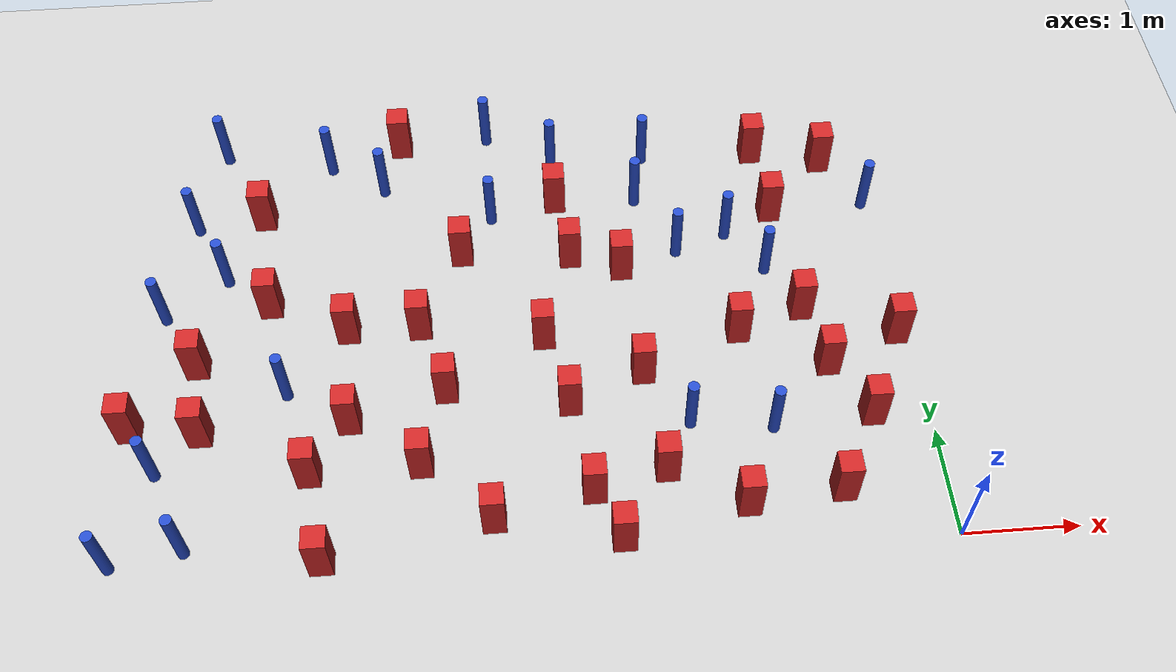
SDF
<sdf version="1.6">
 <world name="default">
  <model name="ground_plane">
   <static>1</static>
   <link name="link">
    <collision name="collision">
     <geometry><plane><normal>0 0 1</normal><size>100 100</size></plane></geometry>
     <surface><friction><ode><mu>100</mu><mu2>50</mu2></ode></friction></surface>
    </collision>
    <visual name="visual">
     <cast_shadows>0</cast_shadows>
     <geometry><plane><normal>0 0 1</normal><size>100 100</size></plane></geometry>
     <material>
      <ambient>1.0 1.0 1.0 1.0</ambient>
      <diffuse>0.8 0.8 0.8 1.0</diffuse>
      <specular>0.01 0.01 0.01 1.000000</specular>
     </material>
    </visual>
   </link>
  </model>
  <model name="pole_obstacle0">
   <static>true</static>
   <pose>-5.60489354962 1.792876674 2.88873142074e-08 -9.90536689445e-09 4.60219948999e-07 -1.20965994956e-07</pose>
   <link name="link">
    <pose>0 0 0.3 0 -0 0</pose>
    <inertial>
     <mass>1</mass>
     <inertia><ixx>0.145833</ixx><ixy>0</ixy><ixz>0</ixz><iyy>0.145833</iyy><iyz>0</iyz><izz>0.125</izz></inertia>
    </inertial>
    <collision name="collision">
     <geometry><cylinder><radius>0.05</radius><length>.6</length></cylinder></geometry>
    </collision>
    <visual name="visual">
     <geometry><cylinder><radius>0.05</radius><length>.6</length></cylinder></geometry>
     <material>
      <script><name>Gazebo/Blue</name><uri>file://media/materials/scripts/gazebo.material</uri></script>
     </material>
    </visual>
   </link>
  </model>
  <model name="pole_obstacle8">
   <static>true</static>
   <pose>-6.21378915268 3.09624534109 2.88873142074e-08 -9.90536690245e-09 4.6021994898e-07 -1.20965994966e-07</pose>
   <link name="link">
    <pose>0 0 0.3 0 -0 0</pose>
    <inertial>
     <mass>1</mass>
     <inertia><ixx>0.145833</ixx><ixy>0</ixy><ixz>0</ixz><iyy>0.145833</iyy><iyz>0</iyz><izz>0.125</izz></inertia>
    </inertial>
    <collision name="collision">
     <geometry><cylinder><radius>0.05</radius><length>.6</length></cylinder></geometry>
    </collision>
    <visual name="visual">
     <geometry><cylinder><radius>0.05</radius><length>.6</length></cylinder></geometry>
     <material>
      <script><name>Gazebo/Blue</name><uri>file://media/materials/scripts/gazebo.material</uri></script>
     </material>
    </visual>
   </link>
  </model>
  <model name="pole_obstacle12">
   <static>true</static>
   <pose>-6.74844758762 2.70002124592 2.88873142074e-08 -9.90536690245e-09 4.6021994898e-07 -1.20965994966e-07</pose>
   <link name="link">
    <pose>0 0 0.3 0 -0 0</pose>
    <inertial>
     <mass>1</mass>
     <inertia><ixx>0.145833</ixx><ixy>0</ixy><ixz>0</ixz><iyy>0.145833</iyy><iyz>0</iyz><izz>0.125</izz></inertia>
    </inertial>
    <collision name="collision">
     <geometry><cylinder><radius>0.05</radius><length>.6</length></cylinder></geometry>
    </collision>
    <visual name="visual">
     <geometry><cylinder><radius>0.05</radius><length>.6</length></cylinder></geometry>
     <material>
      <script><name>Gazebo/Blue</name><uri>file://media/materials/scripts/gazebo.material</uri></script>
     </material>
    </visual>
   </link>
  </model>
  <model name="square_post_obstacle9">
   <static>true</static>
   <pose>-3.12864663933 1.49392424948 8.22691968438e-08 7.2212513382e-06 -7.54495500217e-07 2.29674213826e-05</pose>
   <link name="link">
    <pose>0 0 0.25 0 -0 0</pose>
    <inertial>
     <mass>100</mass>
     <inertia>
      <ixx>0.166667</ixx>
      <ixy>0</ixy>
      <ixz>0</ixz>
      <iyy>0.166667</iyy>
      <iyz>0</iyz>
      <izz>0.166667</izz>
     </inertia>
    </inertial>
    <collision name="collision"><geometry><box><size>.2 .2 .5</size></box></geometry></collision>
    <visual name="visual">
     <geometry><box><size>.2 .2 .5</size></box></geometry>
     <material>
      <script><name>Gazebo/Red</name><uri>file://media/materials/scripts/gazebo.material</uri></script>
     </material>
    </visual>
   </link>
  </model>
  <model name="square_post_obstacle10">
   <static>true</static>
   <pose>-0.963395042714 2.35977024159 8.22691968438e-08 7.2212513382e-06 -7.54495500217e-07 2.29674213826e-05</pose>
   <link name="link">
    <pose>0 0 0.25 0 -0 0</pose>
    <inertial>
     <mass>100</mass>
     <inertia>
      <ixx>0.166667</ixx>
      <ixy>0</ixy>
      <ixz>0</ixz>
      <iyy>0.166667</iyy>
      <iyz>0</iyz>
      <izz>0.166667</izz>
     </inertia>
    </inertial>
    <collision name="collision"><geometry><box><size>.2 .2 .5</size></box></geometry></collision>
    <visual name="visual">
     <geometry><box><size>.2 .2 .5</size></box></geometry>
     <material>
      <script><name>Gazebo/Red</name><uri>file://media/materials/scripts/gazebo.material</uri></script>
     </material>
    </visual>
   </link>
  </model>
  <model name="pole_obstacle15">
   <static>true</static>
   <pose>-6.33041977614 4.64889348198 2.88873142074e-08 -9.90536690842e-09 4.60219948965e-07 -1.20965994976e-07</pose>
   <link name="link">
    <pose>0 0 0.3 0 -0 0</pose>
    <inertial>
     <mass>1</mass>
     <inertia><ixx>0.145833</ixx><ixy>0</ixy><ixz>0</ixz><iyy>0.145833</iyy><iyz>0</iyz><izz>0.125</izz></inertia>
    </inertial>
    <collision name="collision">
     <geometry><cylinder><radius>0.05</radius><length>.6</length></cylinder></geometry>
    </collision>
    <visual name="visual">
     <geometry><cylinder><radius>0.05</radius><length>.6</length></cylinder></geometry>
     <material>
      <script><name>Gazebo/Blue</name><uri>file://media/materials/scripts/gazebo.material</uri></script>
     </material>
    </visual>
   </link>
  </model>
  <model name="square_post_obstacle12">
   <static>true</static>
   <pose>-2.46374674068 1.77407036471 8.22691968438e-08 7.2212513382e-06 -7.54495500217e-07 2.29674213826e-05</pose>
   <link name="link">
    <pose>0 0 0.25 0 -0 0</pose>
    <inertial>
     <mass>100</mass>
     <inertia>
      <ixx>0.166667</ixx>
      <ixy>0</ixy>
      <ixz>0</ixz>
      <iyy>0.166667</iyy>
      <iyz>0</iyz>
      <izz>0.166667</izz>
     </inertia>
    </inertial>
    <collision name="collision"><geometry><box><size>.2 .2 .5</size></box></geometry></collision>
    <visual name="visual">
     <geometry><box><size>.2 .2 .5</size></box></geometry>
     <material>
      <script><name>Gazebo/Red</name><uri>file://media/materials/scripts/gazebo.material</uri></script>
     </material>
    </visual>
   </link>
  </model>
  <model name="pole_obstacle21">
   <static>true</static>
   <pose>-2.35833018893 3.78975664295 2.88873142074e-08 -9.90536690232e-09 4.6021994898e-07 -1.20965994968e-07</pose>
   <link name="link">
    <pose>0 0 0.3 0 -0 0</pose>
    <inertial>
     <mass>1</mass>
     <inertia><ixx>0.145833</ixx><ixy>0</ixy><ixz>0</ixz><iyy>0.145833</iyy><iyz>0</iyz><izz>0.125</izz></inertia>
    </inertial>
    <collision name="collision">
     <geometry><cylinder><radius>0.05</radius><length>.6</length></cylinder></geometry>
    </collision>
    <visual name="visual">
     <geometry><cylinder><radius>0.05</radius><length>.6</length></cylinder></geometry>
     <material>
      <script><name>Gazebo/Blue</name><uri>file://media/materials/scripts/gazebo.material</uri></script>
     </material>
    </visual>
   </link>
  </model>
  <model name="square_post_obstacle18">
   <static>true</static>
   <pose>-3.82786273622 0.410739086908 8.22691968438e-08 7.2212513382e-06 -7.54495500217e-07 2.29674213826e-05</pose>
   <link name="link">
    <pose>0 0 0.25 0 -0 0</pose>
    <inertial>
     <mass>100</mass>
     <inertia>
      <ixx>0.166667</ixx>
      <ixy>0</ixy>
      <ixz>0</ixz>
      <iyy>0.166667</iyy>
      <iyz>0</iyz>
      <izz>0.166667</izz>
     </inertia>
    </inertial>
    <collision name="collision"><geometry><box><size>.2 .2 .5</size></box></geometry></collision>
    <visual name="visual">
     <geometry><box><size>.2 .2 .5</size></box></geometry>
     <material>
      <script><name>Gazebo/Red</name><uri>file://media/materials/scripts/gazebo.material</uri></script>
     </material>
    </visual>
   </link>
  </model>
  <model name="square_post_obstacle23">
   <static>true</static>
   <pose>-6.40385683036 2.13041604049 8.22691968438e-08 7.2212513382e-06 -7.54495500217e-07 2.29674213826e-05</pose>
   <link name="link">
    <pose>0 0 0.25 0 -0 0</pose>
    <inertial>
     <mass>100</mass>
     <inertia>
      <ixx>0.166667</ixx>
      <ixy>0</ixy>
      <ixz>0</ixz>
      <iyy>0.166667</iyy>
      <iyz>0</iyz>
      <izz>0.166667</izz>
     </inertia>
    </inertial>
    <collision name="collision"><geometry><box><size>.2 .2 .5</size></box></geometry></collision>
    <visual name="visual">
     <geometry><box><size>.2 .2 .5</size></box></geometry>
     <material>
      <script><name>Gazebo/Red</name><uri>file://media/materials/scripts/gazebo.material</uri></script>
     </material>
    </visual>
   </link>
  </model>
  <model name="square_post_obstacle31">
   <static>true</static>
   <pose>-4.61185334437 4.64977888289 8.22691968438e-08 7.2212513382e-06 -7.54495500217e-07 2.29674213826e-05</pose>
   <link name="link">
    <pose>0 0 0.25 0 -0 0</pose>
    <inertial>
     <mass>100</mass>
     <inertia>
      <ixx>0.166667</ixx>
      <ixy>0</ixy>
      <ixz>0</ixz>
      <iyy>0.166667</iyy>
      <iyz>0</iyz>
      <izz>0.166667</izz>
     </inertia>
    </inertial>
    <collision name="collision"><geometry><box><size>.2 .2 .5</size></box></geometry></collision>
    <visual name="visual">
     <geometry><box><size>.2 .2 .5</size></box></geometry>
     <material>
      <script><name>Gazebo/Red</name><uri>file://media/materials/scripts/gazebo.material</uri></script>
     </material>
    </visual>
   </link>
  </model>
  <model name="square_post_obstacle32">
   <static>true</static>
   <pose>-4.42955065136 2.40559686794 8.22691968438e-08 7.2212513382e-06 -7.54495500217e-07 2.29674213826e-05</pose>
   <link name="link">
    <pose>0 0 0.25 0 -0 0</pose>
    <inertial>
     <mass>100</mass>
     <inertia>
      <ixx>0.166667</ixx>
      <ixy>0</ixy>
      <ixz>0</ixz>
      <iyy>0.166667</iyy>
      <iyz>0</iyz>
      <izz>0.166667</izz>
     </inertia>
    </inertial>
    <collision name="collision"><geometry><box><size>.2 .2 .5</size></box></geometry></collision>
    <visual name="visual">
     <geometry><box><size>.2 .2 .5</size></box></geometry>
     <material>
      <script><name>Gazebo/Red</name><uri>file://media/materials/scripts/gazebo.material</uri></script>
     </material>
    </visual>
   </link>
  </model>
  <model name="square_post_obstacle39">
   <static>true</static>
   <pose>-5.07668923891 2.41236537664 8.22691968438e-08 7.2212513382e-06 -7.54495500217e-07 2.29674213826e-05</pose>
   <link name="link">
    <pose>0 0 0.25 0 -0 0</pose>
    <inertial>
     <mass>100</mass>
     <inertia>
      <ixx>0.166667</ixx>
      <ixy>0</ixy>
      <ixz>0</ixz>
      <iyy>0.166667</iyy>
      <iyz>0</iyz>
      <izz>0.166667</izz>
     </inertia>
    </inertial>
    <collision name="collision"><geometry><box><size>.2 .2 .5</size></box></geometry></collision>
    <visual name="visual">
     <geometry><box><size>.2 .2 .5</size></box></geometry>
     <material>
      <script><name>Gazebo/Red</name><uri>file://media/materials/scripts/gazebo.material</uri></script>
     </material>
    </visual>
   </link>
  </model>
  <model name="pole_obstacle54">
   <static>true</static>
   <pose>-3.74867551729 3.66465191475 2.88873142074e-08 -9.90536689597e-09 4.60219948995e-07 -1.20965994957e-07</pose>
   <link name="link">
    <pose>0 0 0.3 0 -0 0</pose>
    <inertial>
     <mass>1</mass>
     <inertia><ixx>0.145833</ixx><ixy>0</ixy><ixz>0</ixz><iyy>0.145833</iyy><iyz>0</iyz><izz>0.125</izz></inertia>
    </inertial>
    <collision name="collision">
     <geometry><cylinder><radius>0.05</radius><length>.6</length></cylinder></geometry>
    </collision>
    <visual name="visual">
     <geometry><cylinder><radius>0.05</radius><length>.6</length></cylinder></geometry>
     <material>
      <script><name>Gazebo/Blue</name><uri>file://media/materials/scripts/gazebo.material</uri></script>
     </material>
    </visual>
   </link>
  </model>
  <model name="pole_obstacle55">
   <static>true</static>
   <pose>-5.29426649365 4.42433504899 2.88873142074e-08 -9.90536690842e-09 4.60219948965e-07 -1.20965994976e-07</pose>
   <link name="link">
    <pose>0 0 0.3 0 -0 0</pose>
    <inertial>
     <mass>1</mass>
     <inertia><ixx>0.145833</ixx><ixy>0</ixy><ixz>0</ixz><iyy>0.145833</iyy><iyz>0</iyz><izz>0.125</izz></inertia>
    </inertial>
    <collision name="collision">
     <geometry><cylinder><radius>0.05</radius><length>.6</length></cylinder></geometry>
    </collision>
    <visual name="visual">
     <geometry><cylinder><radius>0.05</radius><length>.6</length></cylinder></geometry>
     <material>
      <script><name>Gazebo/Blue</name><uri>file://media/materials/scripts/gazebo.material</uri></script>
     </material>
    </visual>
   </link>
  </model>
  <model name="square_post_obstacle45">
   <static>true</static>
   <pose>-5.04418810294 1.4522428474 8.22691968438e-08 7.2212513382e-06 -7.54495500217e-07 2.29674213826e-05</pose>
   <link name="link">
    <pose>0 0 0.25 0 -0 0</pose>
    <inertial>
     <mass>100</mass>
     <inertia>
      <ixx>0.166667</ixx>
      <ixy>0</ixy>
      <ixz>0</ixz>
      <iyy>0.166667</iyy>
      <iyz>0</iyz>
      <izz>0.166667</izz>
     </inertia>
    </inertial>
    <collision name="collision"><geometry><box><size>.2 .2 .5</size></box></geometry></collision>
    <visual name="visual">
     <geometry><box><size>.2 .2 .5</size></box></geometry>
     <material>
      <script><name>Gazebo/Red</name><uri>file://media/materials/scripts/gazebo.material</uri></script>
     </material>
    </visual>
   </link>
  </model>
  <model name="square_post_obstacle47">
   <static>true</static>
   <pose>-2.77287363336 0.161301545881 8.22691968438e-08 7.2212513382e-06 -7.54495500217e-07 2.29674213826e-05</pose>
   <link name="link">
    <pose>0 0 0.25 0 -0 0</pose>
    <inertial>
     <mass>100</mass>
     <inertia>
      <ixx>0.166667</ixx>
      <ixy>0</ixy>
      <ixz>0</ixz>
      <iyy>0.166667</iyy>
      <iyz>0</iyz>
      <izz>0.166667</izz>
     </inertia>
    </inertial>
    <collision name="collision"><geometry><box><size>.2 .2 .5</size></box></geometry></collision>
    <visual name="visual">
     <geometry><box><size>.2 .2 .5</size></box></geometry>
     <material>
      <script><name>Gazebo/Red</name><uri>file://media/materials/scripts/gazebo.material</uri></script>
     </material>
    </visual>
   </link>
  </model>
  <model name="square_post_obstacle48">
   <static>true</static>
   <pose>-2.98353195174 0.617059585384 8.22691968438e-08 7.2212513382e-06 -7.54495500217e-07 2.29674213826e-05</pose>
   <link name="link">
    <pose>0 0 0.25 0 -0 0</pose>
    <inertial>
     <mass>100</mass>
     <inertia>
      <ixx>0.166667</ixx>
      <ixy>0</ixy>
      <ixz>0</ixz>
      <iyy>0.166667</iyy>
      <iyz>0</iyz>
      <izz>0.166667</izz>
     </inertia>
    </inertial>
    <collision name="collision"><geometry><box><size>.2 .2 .5</size></box></geometry></collision>
    <visual name="visual">
     <geometry><box><size>.2 .2 .5</size></box></geometry>
     <material>
      <script><name>Gazebo/Red</name><uri>file://media/materials/scripts/gazebo.material</uri></script>
     </material>
    </visual>
   </link>
  </model>
  <model name="square_post_obstacle55">
   <static>true</static>
   <pose>-0.900520533999 0.477779287235 8.22691968438e-08 7.22125133819e-06 -7.54495500217e-07 2.29674213826e-05</pose>
   <link name="link">
    <pose>0 0 0.25 0 -0 0</pose>
    <inertial>
     <mass>100</mass>
     <inertia>
      <ixx>0.166667</ixx>
      <ixy>0</ixy>
      <ixz>0</ixz>
      <iyy>0.166667</iyy>
      <iyz>0</iyz>
      <izz>0.166667</izz>
     </inertia>
    </inertial>
    <collision name="collision"><geometry><box><size>.2 .2 .5</size></box></geometry></collision>
    <visual name="visual">
     <geometry><box><size>.2 .2 .5</size></box></geometry>
     <material>
      <script><name>Gazebo/Red</name><uri>file://media/materials/scripts/gazebo.material</uri></script>
     </material>
    </visual>
   </link>
  </model>
  <model name="pole_obstacle74">
   <static>true</static>
   <pose>-1.38763711119 1.13230665274 2.88873142074e-08 -9.90536689672e-09 4.60219948993e-07 -1.20965994959e-07</pose>
   <link name="link">
    <pose>0 0 0.3 0 -0 0</pose>
    <inertial>
     <mass>1</mass>
     <inertia><ixx>0.145833</ixx><ixy>0</ixy><ixz>0</ixz><iyy>0.145833</iyy><iyz>0</iyz><izz>0.125</izz></inertia>
    </inertial>
    <collision name="collision">
     <geometry><cylinder><radius>0.05</radius><length>.6</length></cylinder></geometry>
    </collision>
    <visual name="visual">
     <geometry><cylinder><radius>0.05</radius><length>.6</length></cylinder></geometry>
     <material>
      <script><name>Gazebo/Blue</name><uri>file://media/materials/scripts/gazebo.material</uri></script>
     </material>
    </visual>
   </link>
  </model>
  <model name="square_post_obstacle66">
   <static>true</static>
   <pose>-2.3560046566 0.77754234964 8.22691968438e-08 7.2212513382e-06 -7.54495500217e-07 2.29674213826e-05</pose>
   <link name="link">
    <pose>0 0 0.25 0 -0 0</pose>
    <inertial>
     <mass>100</mass>
     <inertia>
      <ixx>0.166667</ixx>
      <ixy>0</ixy>
      <ixz>0</ixz>
      <iyy>0.166667</iyy>
      <iyz>0</iyz>
      <izz>0.166667</izz>
     </inertia>
    </inertial>
    <collision name="collision"><geometry><box><size>.2 .2 .5</size></box></geometry></collision>
    <visual name="visual">
     <geometry><box><size>.2 .2 .5</size></box></geometry>
     <material>
      <script><name>Gazebo/Red</name><uri>file://media/materials/scripts/gazebo.material</uri></script>
     </material>
    </visual>
   </link>
  </model>
  <model name="pole_obstacle79">
   <static>true</static>
   <pose>-0.157778980008 3.58019601915 2.88873142074e-08 -9.9053669244e-09 4.60219948928e-07 -1.20965994988e-07</pose>
   <link name="link">
    <pose>0 0 0.3 0 -0 0</pose>
    <inertial>
     <mass>1</mass>
     <inertia><ixx>0.145833</ixx><ixy>0</ixy><ixz>0</ixz><iyy>0.145833</iyy><iyz>0</iyz><izz>0.125</izz></inertia>
    </inertial>
    <collision name="collision">
     <geometry><cylinder><radius>0.05</radius><length>.6</length></cylinder></geometry>
    </collision>
    <visual name="visual">
     <geometry><cylinder><radius>0.05</radius><length>.6</length></cylinder></geometry>
     <material>
      <script><name>Gazebo/Blue</name><uri>file://media/materials/scripts/gazebo.material</uri></script>
     </material>
    </visual>
   </link>
  </model>
  <model name="pole_obstacle80">
   <static>true</static>
   <pose>-6.9645458156 0.231076082944 2.88873142074e-08 -9.90536689438e-09 4.60219948999e-07 -1.20965994956e-07</pose>
   <link name="link">
    <pose>0 0 0.3 0 -0 0</pose>
    <inertial>
     <mass>1</mass>
     <inertia><ixx>0.145833</ixx><ixy>0</ixy><ixz>0</ixz><iyy>0.145833</iyy><iyz>0</iyz><izz>0.125</izz></inertia>
    </inertial>
    <collision name="collision">
     <geometry><cylinder><radius>0.05</radius><length>.6</length></cylinder></geometry>
    </collision>
    <visual name="visual">
     <geometry><cylinder><radius>0.05</radius><length>.6</length></cylinder></geometry>
     <material>
      <script><name>Gazebo/Blue</name><uri>file://media/materials/scripts/gazebo.material</uri></script>
     </material>
    </visual>
   </link>
  </model>
  <model name="square_post_obstacle73">
   <static>true</static>
   <pose>-0.519013909457 1.19269131074 8.22691968438e-08 7.2212513382e-06 -7.54495500217e-07 2.29674213826e-05</pose>
   <link name="link">
    <pose>0 0 0.25 0 -0 0</pose>
    <inertial>
     <mass>100</mass>
     <inertia>
      <ixx>0.166667</ixx>
      <ixy>0</ixy>
      <ixz>0</ixz>
      <iyy>0.166667</iyy>
      <iyz>0</iyz>
      <izz>0.166667</izz>
     </inertia>
    </inertial>
    <collision name="collision"><geometry><box><size>.2 .2 .5</size></box></geometry></collision>
    <visual name="visual">
     <geometry><box><size>.2 .2 .5</size></box></geometry>
     <material>
      <script><name>Gazebo/Red</name><uri>file://media/materials/scripts/gazebo.material</uri></script>
     </material>
    </visual>
   </link>
  </model>
  <model name="square_post_obstacle85">
   <static>true</static>
   <pose>-2.55890255575 2.94618447127 8.22691968438e-08 7.2212513382e-06 -7.54495500217e-07 2.29674213826e-05</pose>
   <link name="link">
    <pose>0 0 0.25 0 -0 0</pose>
    <inertial>
     <mass>100</mass>
     <inertia>
      <ixx>0.166667</ixx>
      <ixy>0</ixy>
      <ixz>0</ixz>
      <iyy>0.166667</iyy>
      <iyz>0</iyz>
      <izz>0.166667</izz>
     </inertia>
    </inertial>
    <collision name="collision"><geometry><box><size>.2 .2 .5</size></box></geometry></collision>
    <visual name="visual">
     <geometry><box><size>.2 .2 .5</size></box></geometry>
     <material>
      <script><name>Gazebo/Red</name><uri>file://media/materials/scripts/gazebo.material</uri></script>
     </material>
    </visual>
   </link>
  </model>
  <model name="pole_obstacle104">
   <static>true</static>
   <pose>-1.53660623125 3.30327488801 2.88873142074e-08 -9.90536689791e-09 4.6021994899e-07 -1.20965994959e-07</pose>
   <link name="link">
    <pose>0 0 0.3 0 -0 0</pose>
    <inertial>
     <mass>1</mass>
     <inertia><ixx>0.145833</ixx><ixy>0</ixy><ixz>0</ixz><iyy>0.145833</iyy><iyz>0</iyz><izz>0.125</izz></inertia>
    </inertial>
    <collision name="collision">
     <geometry><cylinder><radius>0.05</radius><length>.6</length></cylinder></geometry>
    </collision>
    <visual name="visual">
     <geometry><cylinder><radius>0.05</radius><length>.6</length></cylinder></geometry>
     <material>
      <script><name>Gazebo/Blue</name><uri>file://media/materials/scripts/gazebo.material</uri></script>
     </material>
    </visual>
   </link>
  </model>
  <model name="square_post_obstacle108">
   <static>true</static>
   <pose>-4.42427465037 0.974187072032 8.22691968438e-08 7.2212513382e-06 -7.54495500217e-07 2.29674213826e-05</pose>
   <link name="link">
    <pose>0 0 0.25 0 -0 0</pose>
    <inertial>
     <mass>100</mass>
     <inertia>
      <ixx>0.166667</ixx>
      <ixy>0</ixy>
      <ixz>0</ixz>
      <iyy>0.166667</iyy>
      <iyz>0</iyz>
      <izz>0.166667</izz>
     </inertia>
    </inertial>
    <collision name="collision"><geometry><box><size>.2 .2 .5</size></box></geometry></collision>
    <visual name="visual">
     <geometry><box><size>.2 .2 .5</size></box></geometry>
     <material>
      <script><name>Gazebo/Red</name><uri>file://media/materials/scripts/gazebo.material</uri></script>
     </material>
    </visual>
   </link>
  </model>
  <model name="square_post_obstacle112">
   <static>true</static>
   <pose>-5.90844666778 3.80968562257 8.22691968438e-08 7.2212513382e-06 -7.54495500217e-07 2.29674213826e-05</pose>
   <link name="link">
    <pose>0 0 0.25 0 -0 0</pose>
    <inertial>
     <mass>100</mass>
     <inertia>
      <ixx>0.166667</ixx>
      <ixy>0</ixy>
      <ixz>0</ixz>
      <iyy>0.166667</iyy>
      <iyz>0</iyz>
      <izz>0.166667</izz>
     </inertia>
    </inertial>
    <collision name="collision"><geometry><box><size>.2 .2 .5</size></box></geometry></collision>
    <visual name="visual">
     <geometry><box><size>.2 .2 .5</size></box></geometry>
     <material>
      <script><name>Gazebo/Red</name><uri>file://media/materials/scripts/gazebo.material</uri></script>
     </material>
    </visual>
   </link>
  </model>
  <model name="square_post_obstacle120">
   <static>true</static>
   <pose>-3.02503774349 3.12774283715 8.22691968438e-08 7.2212513382e-06 -7.54495500217e-07 2.29674213826e-05</pose>
   <link name="link">
    <pose>0 0 0.25 0 -0 0</pose>
    <inertial>
     <mass>100</mass>
     <inertia>
      <ixx>0.166667</ixx>
      <ixy>0</ixy>
      <ixz>0</ixz>
      <iyy>0.166667</iyy>
      <iyz>0</iyz>
      <izz>0.166667</izz>
     </inertia>
    </inertial>
    <collision name="collision"><geometry><box><size>.2 .2 .5</size></box></geometry></collision>
    <visual name="visual">
     <geometry><box><size>.2 .2 .5</size></box></geometry>
     <material>
      <script><name>Gazebo/Red</name><uri>file://media/materials/scripts/gazebo.material</uri></script>
     </material>
    </visual>
   </link>
  </model>
  <model name="pole_obstacle119">
   <static>true</static>
   <pose>-6.68403330491 1.06894650893 2.88873142074e-08 -9.90536689445e-09 4.60219948999e-07 -1.20965994956e-07</pose>
   <link name="link">
    <pose>0 0 0.3 0 -0 0</pose>
    <inertial>
     <mass>1</mass>
     <inertia><ixx>0.145833</ixx><ixy>0</ixy><ixz>0</ixz><iyy>0.145833</iyy><iyz>0</iyz><izz>0.125</izz></inertia>
    </inertial>
    <collision name="collision">
     <geometry><cylinder><radius>0.05</radius><length>.6</length></cylinder></geometry>
    </collision>
    <visual name="visual">
     <geometry><cylinder><radius>0.05</radius><length>.6</length></cylinder></geometry>
     <material>
      <script><name>Gazebo/Blue</name><uri>file://media/materials/scripts/gazebo.material</uri></script>
     </material>
    </visual>
   </link>
  </model>
  <model name="square_post_obstacle125">
   <static>true</static>
   <pose>-6.3211867806 1.42510420292 8.22691968438e-08 7.2212513382e-06 -7.54495500217e-07 2.29674213826e-05</pose>
   <link name="link">
    <pose>0 0 0.25 0 -0 0</pose>
    <inertial>
     <mass>100</mass>
     <inertia>
      <ixx>0.166667</ixx>
      <ixy>0</ixy>
      <ixz>0</ixz>
      <iyy>0.166667</iyy>
      <iyz>0</iyz>
      <izz>0.166667</izz>
     </inertia>
    </inertial>
    <collision name="collision"><geometry><box><size>.2 .2 .5</size></box></geometry></collision>
    <visual name="visual">
     <geometry><box><size>.2 .2 .5</size></box></geometry>
     <material>
      <script><name>Gazebo/Red</name><uri>file://media/materials/scripts/gazebo.material</uri></script>
     </material>
    </visual>
   </link>
  </model>
  <model name="pole_obstacle130">
   <static>true</static>
   <pose>-3.13848923542 4.34505618959 2.88873142074e-08 -9.90536692062e-09 4.60219948937e-07 -1.20965994985e-07</pose>
   <link name="link">
    <pose>0 0 0.3 0 -0 0</pose>
    <inertial>
     <mass>1</mass>
     <inertia><ixx>0.145833</ixx><ixy>0</ixy><ixz>0</ixz><iyy>0.145833</iyy><iyz>0</iyz><izz>0.125</izz></inertia>
    </inertial>
    <collision name="collision">
     <geometry><cylinder><radius>0.05</radius><length>.6</length></cylinder></geometry>
    </collision>
    <visual name="visual">
     <geometry><cylinder><radius>0.05</radius><length>.6</length></cylinder></geometry>
     <material>
      <script><name>Gazebo/Blue</name><uri>file://media/materials/scripts/gazebo.material</uri></script>
     </material>
    </visual>
   </link>
  </model>
  <model name="square_post_obstacle128">
   <static>true</static>
   <pose>-1.15658483708 4.31016241691 8.22691968438e-08 7.2212513382e-06 -7.54495500217e-07 2.29674213826e-05</pose>
   <link name="link">
    <pose>0 0 0.25 0 -0 0</pose>
    <inertial>
     <mass>100</mass>
     <inertia>
      <ixx>0.166667</ixx>
      <ixy>0</ixy>
      <ixz>0</ixz>
      <iyy>0.166667</iyy>
      <iyz>0</iyz>
      <izz>0.166667</izz>
     </inertia>
    </inertial>
    <collision name="collision"><geometry><box><size>.2 .2 .5</size></box></geometry></collision>
    <visual name="visual">
     <geometry><box><size>.2 .2 .5</size></box></geometry>
     <material>
      <script><name>Gazebo/Red</name><uri>file://media/materials/scripts/gazebo.material</uri></script>
     </material>
    </visual>
   </link>
  </model>
  <model name="square_post_obstacle130">
   <static>true</static>
   <pose>-0.144939360073 2.02659496928 8.22691968438e-08 7.2212513382e-06 -7.54495500217e-07 2.29674213826e-05</pose>
   <link name="link">
    <pose>0 0 0.25 0 -0 0</pose>
    <inertial>
     <mass>100</mass>
     <inertia>
      <ixx>0.166667</ixx>
      <ixy>0</ixy>
      <ixz>0</ixz>
      <iyy>0.166667</iyy>
      <iyz>0</iyz>
      <izz>0.166667</izz>
     </inertia>
    </inertial>
    <collision name="collision"><geometry><box><size>.2 .2 .5</size></box></geometry></collision>
    <visual name="visual">
     <geometry><box><size>.2 .2 .5</size></box></geometry>
     <material>
      <script><name>Gazebo/Red</name><uri>file://media/materials/scripts/gazebo.material</uri></script>
     </material>
    </visual>
   </link>
  </model>
  <model name="square_post_obstacle131">
   <static>true</static>
   <pose>-1.56836750986 2.15038411632 8.22691968438e-08 7.2212513382e-06 -7.54495500217e-07 2.29674213826e-05</pose>
   <link name="link">
    <pose>0 0 0.25 0 -0 0</pose>
    <inertial>
     <mass>100</mass>
     <inertia>
      <ixx>0.166667</ixx>
      <ixy>0</ixy>
      <ixz>0</ixz>
      <iyy>0.166667</iyy>
      <iyz>0</iyz>
      <izz>0.166667</izz>
     </inertia>
    </inertial>
    <collision name="collision"><geometry><box><size>.2 .2 .5</size></box></geometry></collision>
    <visual name="visual">
     <geometry><box><size>.2 .2 .5</size></box></geometry>
     <material>
      <script><name>Gazebo/Red</name><uri>file://media/materials/scripts/gazebo.material</uri></script>
     </material>
    </visual>
   </link>
  </model>
  <model name="square_post_obstacle132">
   <static>true</static>
   <pose>-5.37058958059 0.956360415068 8.22691968438e-08 7.22125133819e-06 -7.54495500217e-07 2.29674213826e-05</pose>
   <link name="link">
    <pose>0 0 0.25 0 -0 0</pose>
    <inertial>
     <mass>100</mass>
     <inertia>
      <ixx>0.166667</ixx>
      <ixy>0</ixy>
      <ixz>0</ixz>
      <iyy>0.166667</iyy>
      <iyz>0</iyz>
      <izz>0.166667</izz>
     </inertia>
    </inertial>
    <collision name="collision"><geometry><box><size>.2 .2 .5</size></box></geometry></collision>
    <visual name="visual">
     <geometry><box><size>.2 .2 .5</size></box></geometry>
     <material>
      <script><name>Gazebo/Red</name><uri>file://media/materials/scripts/gazebo.material</uri></script>
     </material>
    </visual>
   </link>
  </model>
  <model name="pole_obstacle134">
   <static>true</static>
   <pose>-4.77715220601 4.09955190887 2.88873142074e-08 -9.90536690842e-09 4.60219948965e-07 -1.20965994976e-07</pose>
   <link name="link">
    <pose>0 0 0.3 0 -0 0</pose>
    <inertial>
     <mass>1</mass>
     <inertia><ixx>0.145833</ixx><ixy>0</ixy><ixz>0</ixz><iyy>0.145833</iyy><iyz>0</iyz><izz>0.125</izz></inertia>
    </inertial>
    <collision name="collision">
     <geometry><cylinder><radius>0.05</radius><length>.6</length></cylinder></geometry>
    </collision>
    <visual name="visual">
     <geometry><cylinder><radius>0.05</radius><length>.6</length></cylinder></geometry>
     <material>
      <script><name>Gazebo/Blue</name><uri>file://media/materials/scripts/gazebo.material</uri></script>
     </material>
    </visual>
   </link>
  </model>
  <model name="pole_obstacle143">
   <static>true</static>
   <pose>-6.36720929073 0.326840538518 2.88873142074e-08 -9.90536689981e-09 4.60219948986e-07 -1.20965994962e-07</pose>
   <link name="link">
    <pose>0 0 0.3 0 -0 0</pose>
    <inertial>
     <mass>1</mass>
     <inertia><ixx>0.145833</ixx><ixy>0</ixy><ixz>0</ixz><iyy>0.145833</iyy><iyz>0</iyz><izz>0.125</izz></inertia>
    </inertial>
    <collision name="collision">
     <geometry><cylinder><radius>0.05</radius><length>.6</length></cylinder></geometry>
    </collision>
    <visual name="visual">
     <geometry><cylinder><radius>0.05</radius><length>.6</length></cylinder></geometry>
     <material>
      <script><name>Gazebo/Blue</name><uri>file://media/materials/scripts/gazebo.material</uri></script>
     </material>
    </visual>
   </link>
  </model>
  <model name="pole_obstacle144">
   <static>true</static>
   <pose>-2.23688212649 4.33697302398 2.88873142074e-08 -9.90536689859e-09 4.60219948989e-07 -1.20965994961e-07</pose>
   <link name="link">
    <pose>0 0 0.3 0 -0 0</pose>
    <inertial>
     <mass>1</mass>
     <inertia><ixx>0.145833</ixx><ixy>0</ixy><ixz>0</ixz><iyy>0.145833</iyy><iyz>0</iyz><izz>0.125</izz></inertia>
    </inertial>
    <collision name="collision">
     <geometry><cylinder><radius>0.05</radius><length>.6</length></cylinder></geometry>
    </collision>
    <visual name="visual">
     <geometry><cylinder><radius>0.05</radius><length>.6</length></cylinder></geometry>
     <material>
      <script><name>Gazebo/Blue</name><uri>file://media/materials/scripts/gazebo.material</uri></script>
     </material>
    </visual>
   </link>
  </model>
  <model name="pole_obstacle148">
   <static>true</static>
   <pose>-2.10301368535 1.2326385624 2.88873142074e-08 -9.90536689395e-09 4.60219949e-07 -1.20965994953e-07</pose>
   <link name="link">
    <pose>0 0 0.3 0 -0 0</pose>
    <inertial>
     <mass>1</mass>
     <inertia><ixx>0.145833</ixx><ixy>0</ixy><ixz>0</ixz><iyy>0.145833</iyy><iyz>0</iyz><izz>0.125</izz></inertia>
    </inertial>
    <collision name="collision">
     <geometry><cylinder><radius>0.05</radius><length>.6</length></cylinder></geometry>
    </collision>
    <visual name="visual">
     <geometry><cylinder><radius>0.05</radius><length>.6</length></cylinder></geometry>
     <material>
      <script><name>Gazebo/Blue</name><uri>file://media/materials/scripts/gazebo.material</uri></script>
     </material>
    </visual>
   </link>
  </model>
  <model name="square_post_obstacle152">
   <static>true</static>
   <pose>-3.13187728901 3.81449629504 8.22691968438e-08 7.2212513382e-06 -7.54495500217e-07 2.29674213826e-05</pose>
   <link name="link">
    <pose>0 0 0.25 0 -0 0</pose>
    <inertial>
     <mass>100</mass>
     <inertia>
      <ixx>0.166667</ixx>
      <ixy>0</ixy>
      <ixz>0</ixz>
      <iyy>0.166667</iyy>
      <iyz>0</iyz>
      <izz>0.166667</izz>
     </inertia>
    </inertial>
    <collision name="collision"><geometry><box><size>.2 .2 .5</size></box></geometry></collision>
    <visual name="visual">
     <geometry><box><size>.2 .2 .5</size></box></geometry>
     <material>
      <script><name>Gazebo/Red</name><uri>file://media/materials/scripts/gazebo.material</uri></script>
     </material>
    </visual>
   </link>
  </model>
  <model name="pole_obstacle157">
   <static>true</static>
   <pose>-1.21621449976 2.85590921403 2.88873142074e-08 -9.90536689791e-09 4.6021994899e-07 -1.20965994959e-07</pose>
   <link name="link">
    <pose>0 0 0.3 0 -0 0</pose>
    <inertial>
     <mass>1</mass>
     <inertia><ixx>0.145833</ixx><ixy>0</ixy><ixz>0</ixz><iyy>0.145833</iyy><iyz>0</iyz><izz>0.125</izz></inertia>
    </inertial>
    <collision name="collision">
     <geometry><cylinder><radius>0.05</radius><length>.6</length></cylinder></geometry>
    </collision>
    <visual name="visual">
     <geometry><cylinder><radius>0.05</radius><length>.6</length></cylinder></geometry>
     <material>
      <script><name>Gazebo/Blue</name><uri>file://media/materials/scripts/gazebo.material</uri></script>
     </material>
    </visual>
   </link>
  </model>
  <model name="square_post_obstacle156">
   <static>true</static>
   <pose>-4.20197435618 1.70629069803 8.22691968438e-08 7.2212513382e-06 -7.54495500217e-07 2.29674213826e-05</pose>
   <link name="link">
    <pose>0 0 0.25 0 -0 0</pose>
    <inertial>
     <mass>100</mass>
     <inertia>
      <ixx>0.166667</ixx>
      <ixy>0</ixy>
      <ixz>0</ixz>
      <iyy>0.166667</iyy>
      <iyz>0</iyz>
      <izz>0.166667</izz>
     </inertia>
    </inertial>
    <collision name="collision"><geometry><box><size>.2 .2 .5</size></box></geometry></collision>
    <visual name="visual">
     <geometry><box><size>.2 .2 .5</size></box></geometry>
     <material>
      <script><name>Gazebo/Red</name><uri>file://media/materials/scripts/gazebo.material</uri></script>
     </material>
    </visual>
   </link>
  </model>
  <model name="square_post_obstacle169">
   <static>true</static>
   <pose>-5.79058324302 2.75443466463 8.22691968438e-08 7.2212513382e-06 -7.54495500217e-07 2.29674213826e-05</pose>
   <link name="link">
    <pose>0 0 0.25 0 -0 0</pose>
    <inertial>
     <mass>100</mass>
     <inertia>
      <ixx>0.166667</ixx>
      <ixy>0</ixy>
      <ixz>0</ixz>
      <iyy>0.166667</iyy>
      <iyz>0</iyz>
      <izz>0.166667</izz>
     </inertia>
    </inertial>
    <collision name="collision"><geometry><box><size>.2 .2 .5</size></box></geometry></collision>
    <visual name="visual">
     <geometry><box><size>.2 .2 .5</size></box></geometry>
     <material>
      <script><name>Gazebo/Red</name><uri>file://media/materials/scripts/gazebo.material</uri></script>
     </material>
    </visual>
   </link>
  </model>
  <model name="square_post_obstacle173">
   <static>true</static>
   <pose>-1.08059151419 3.54235540296 8.22691968438e-08 7.22125133819e-06 -7.54495500217e-07 2.29674213826e-05</pose>
   <link name="link">
    <pose>0 0 0.25 0 -0 0</pose>
    <inertial>
     <mass>100</mass>
     <inertia>
      <ixx>0.166667</ixx>
      <ixy>0</ixy>
      <ixz>0</ixz>
      <iyy>0.166667</iyy>
      <iyz>0</iyz>
      <izz>0.166667</izz>
     </inertia>
    </inertial>
    <collision name="collision"><geometry><box><size>.2 .2 .5</size></box></geometry></collision>
    <visual name="visual">
     <geometry><box><size>.2 .2 .5</size></box></geometry>
     <material>
      <script><name>Gazebo/Red</name><uri>file://media/materials/scripts/gazebo.material</uri></script>
     </material>
    </visual>
   </link>
  </model>
  <model name="square_post_obstacle174">
   <static>true</static>
   <pose>-0.501721761248 4.1390213821 8.22691968438e-08 7.2212513382e-06 -7.54495500217e-07 2.29674213826e-05</pose>
   <link name="link">
    <pose>0 0 0.25 0 -0 0</pose>
    <inertial>
     <mass>100</mass>
     <inertia>
      <ixx>0.166667</ixx>
      <ixy>0</ixy>
      <ixz>0</ixz>
      <iyy>0.166667</iyy>
      <iyz>0</iyz>
      <izz>0.166667</izz>
     </inertia>
    </inertial>
    <collision name="collision"><geometry><box><size>.2 .2 .5</size></box></geometry></collision>
    <visual name="visual">
     <geometry><box><size>.2 .2 .5</size></box></geometry>
     <material>
      <script><name>Gazebo/Red</name><uri>file://media/materials/scripts/gazebo.material</uri></script>
     </material>
    </visual>
   </link>
  </model>
  <model name="pole_obstacle177">
   <static>true</static>
   <pose>-6.53852456926 3.7409930987 2.88873142074e-08 -9.90536690245e-09 4.6021994898e-07 -1.20965994966e-07</pose>
   <link name="link">
    <pose>0 0 0.3 0 -0 0</pose>
    <inertial>
     <mass>1</mass>
     <inertia><ixx>0.145833</ixx><ixy>0</ixy><ixz>0</ixz><iyy>0.145833</iyy><iyz>0</iyz><izz>0.125</izz></inertia>
    </inertial>
    <collision name="collision">
     <geometry><cylinder><radius>0.05</radius><length>.6</length></cylinder></geometry>
    </collision>
    <visual name="visual">
     <geometry><cylinder><radius>0.05</radius><length>.6</length></cylinder></geometry>
     <material>
      <script><name>Gazebo/Blue</name><uri>file://media/materials/scripts/gazebo.material</uri></script>
     </material>
    </visual>
   </link>
  </model>
  <model name="square_post_obstacle177">
   <static>true</static>
   <pose>-3.32029570895 2.21395664637 8.22691968438e-08 7.2212513382e-06 -7.54495500217e-07 2.29674213826e-05</pose>
   <link name="link">
    <pose>0 0 0.25 0 -0 0</pose>
    <inertial>
     <mass>100</mass>
     <inertia>
      <ixx>0.166667</ixx>
      <ixy>0</ixy>
      <ixz>0</ixz>
      <iyy>0.166667</iyy>
      <iyz>0</iyz>
      <izz>0.166667</izz>
     </inertia>
    </inertial>
    <collision name="collision"><geometry><box><size>.2 .2 .5</size></box></geometry></collision>
    <visual name="visual">
     <geometry><box><size>.2 .2 .5</size></box></geometry>
     <material>
      <script><name>Gazebo/Red</name><uri>file://media/materials/scripts/gazebo.material</uri></script>
     </material>
    </visual>
   </link>
  </model>
  <model name="square_post_obstacle192">
   <static>true</static>
   <pose>-0.81776552491 1.73827073479 8.22691968438e-08 7.2212513382e-06 -7.54495500217e-07 2.29674213826e-05</pose>
   <link name="link">
    <pose>0 0 0.25 0 -0 0</pose>
    <inertial>
     <mass>100</mass>
     <inertia>
      <ixx>0.166667</ixx>
      <ixy>0</ixy>
      <ixz>0</ixz>
      <iyy>0.166667</iyy>
      <iyz>0</iyz>
      <izz>0.166667</izz>
     </inertia>
    </inertial>
    <collision name="collision"><geometry><box><size>.2 .2 .5</size></box></geometry></collision>
    <visual name="visual">
     <geometry><box><size>.2 .2 .5</size></box></geometry>
     <material>
      <script><name>Gazebo/Red</name><uri>file://media/materials/scripts/gazebo.material</uri></script>
     </material>
    </visual>
   </link>
  </model>
  <model name="pole_obstacle189">
   <static>true</static>
   <pose>-2.02135909973 3.12976340162 2.88873142074e-08 -9.90536692171e-09 4.60219948934e-07 -1.20965994985e-07</pose>
   <link name="link">
    <pose>0 0 0.3 0 -0 0</pose>
    <inertial>
     <mass>1</mass>
     <inertia><ixx>0.145833</ixx><ixy>0</ixy><ixz>0</ixz><iyy>0.145833</iyy><iyz>0</iyz><izz>0.125</izz></inertia>
    </inertial>
    <collision name="collision">
     <geometry><cylinder><radius>0.05</radius><length>.6</length></cylinder></geometry>
    </collision>
    <visual name="visual">
     <geometry><cylinder><radius>0.05</radius><length>.6</length></cylinder></geometry>
     <material>
      <script><name>Gazebo/Blue</name><uri>file://media/materials/scripts/gazebo.material</uri></script>
     </material>
    </visual>
   </link>
  </model>
  <model name="square_post_obstacle203">
   <static>true</static>
   <pose>-4.03522082931 3.22420011162 8.22691968438e-08 7.2212513382e-06 -7.54495500217e-07 2.29674213826e-05</pose>
   <link name="link">
    <pose>0 0 0.25 0 -0 0</pose>
    <inertial>
     <mass>100</mass>
     <inertia>
      <ixx>0.166667</ixx>
      <ixy>0</ixy>
      <ixz>0</ixz>
      <iyy>0.166667</iyy>
      <iyz>0</iyz>
      <izz>0.166667</izz>
     </inertia>
    </inertial>
    <collision name="collision"><geometry><box><size>.2 .2 .5</size></box></geometry></collision>
    <visual name="visual">
     <geometry><box><size>.2 .2 .5</size></box></geometry>
     <material>
      <script><name>Gazebo/Red</name><uri>file://media/materials/scripts/gazebo.material</uri></script>
     </material>
    </visual>
   </link>
  </model>
  <model name="square_post_obstacle208">
   <static>true</static>
   <pose>-1.71300582676 0.401984616326 8.22691968438e-08 7.2212513382e-06 -7.54495500217e-07 2.29674213826e-05</pose>
   <link name="link">
    <pose>0 0 0.25 0 -0 0</pose>
    <inertial>
     <mass>100</mass>
     <inertia>
      <ixx>0.166667</ixx>
      <ixy>0</ixy>
      <ixz>0</ixz>
      <iyy>0.166667</iyy>
      <iyz>0</iyz>
      <izz>0.166667</izz>
     </inertia>
    </inertial>
    <collision name="collision"><geometry><box><size>.2 .2 .5</size></box></geometry></collision>
    <visual name="visual">
     <geometry><box><size>.2 .2 .5</size></box></geometry>
     <material>
      <script><name>Gazebo/Red</name><uri>file://media/materials/scripts/gazebo.material</uri></script>
     </material>
    </visual>
   </link>
  </model>
  <model name="square_post_obstacle210">
   <static>true</static>
   <pose>-5.234645464 0.140838762101 8.22691968438e-08 7.2212513382e-06 -7.54495500217e-07 2.29674213826e-05</pose>
   <link name="link">
    <pose>0 0 0.25 0 -0 0</pose>
    <inertial>
     <mass>100</mass>
     <inertia>
      <ixx>0.166667</ixx>
      <ixy>0</ixy>
      <ixz>0</ixz>
      <iyy>0.166667</iyy>
      <iyz>0</iyz>
      <izz>0.166667</izz>
     </inertia>
    </inertial>
    <collision name="collision"><geometry><box><size>.2 .2 .5</size></box></geometry></collision>
    <visual name="visual">
     <geometry><box><size>.2 .2 .5</size></box></geometry>
     <material>
      <script><name>Gazebo/Red</name><uri>file://media/materials/scripts/gazebo.material</uri></script>
     </material>
    </visual>
   </link>
  </model>
  <model name="pole_obstacle211">
   <static>true</static>
   <pose>-3.76773881025 4.70469352319 2.88873142074e-08 -9.90536692062e-09 4.60219948937e-07 -1.20965994985e-07</pose>
   <link name="link">
    <pose>0 0 0.3 0 -0 0</pose>
    <inertial>
     <mass>1</mass>
     <inertia><ixx>0.145833</ixx><ixy>0</ixy><ixz>0</ixz><iyy>0.145833</iyy><iyz>0</iyz><izz>0.125</izz></inertia>
    </inertial>
    <collision name="collision">
     <geometry><cylinder><radius>0.05</radius><length>.6</length></cylinder></geometry>
    </collision>
    <visual name="visual">
     <geometry><cylinder><radius>0.05</radius><length>.6</length></cylinder></geometry>
     <material>
      <script><name>Gazebo/Blue</name><uri>file://media/materials/scripts/gazebo.material</uri></script>
     </material>
    </visual>
   </link>
  </model>
  <model name="square_post_obstacle221">
   <static>true</static>
   <pose>-6.93546355966 1.51489920163 8.22691968438e-08 7.2212513382e-06 -7.54495500217e-07 2.29674213826e-05</pose>
   <link name="link">
    <pose>0 0 0.25 0 -0 0</pose>
    <inertial>
     <mass>100</mass>
     <inertia>
      <ixx>0.166667</ixx>
      <ixy>0</ixy>
      <ixz>0</ixz>
      <iyy>0.166667</iyy>
      <iyz>0</iyz>
      <izz>0.166667</izz>
     </inertia>
    </inertial>
    <collision name="collision"><geometry><box><size>.2 .2 .5</size></box></geometry></collision>
    <visual name="visual">
     <geometry><box><size>.2 .2 .5</size></box></geometry>
     <material>
      <script><name>Gazebo/Red</name><uri>file://media/materials/scripts/gazebo.material</uri></script>
     </material>
    </visual>
   </link>
  </model>
 </world>
</sdf>
